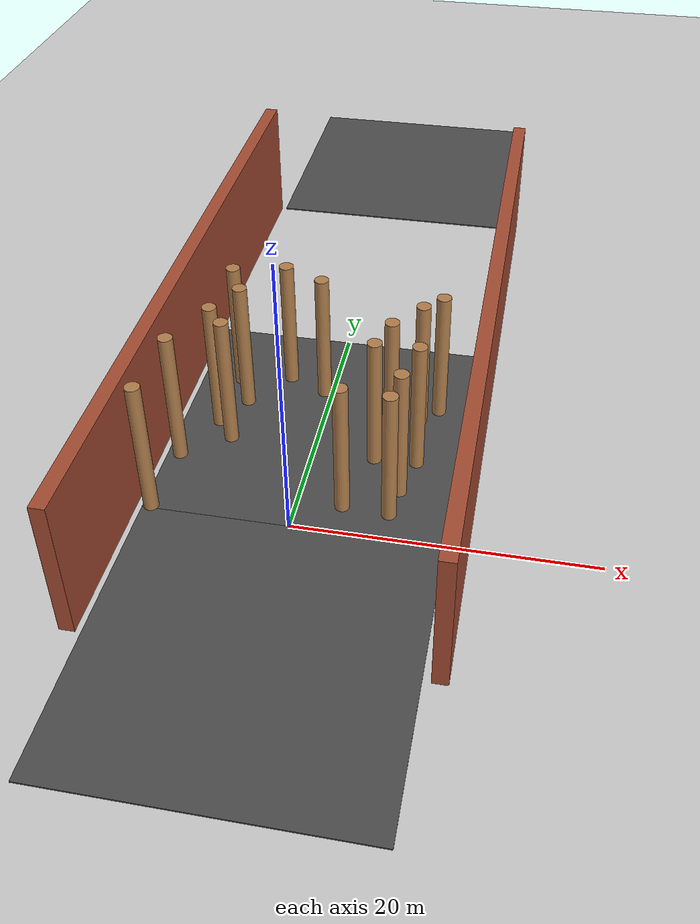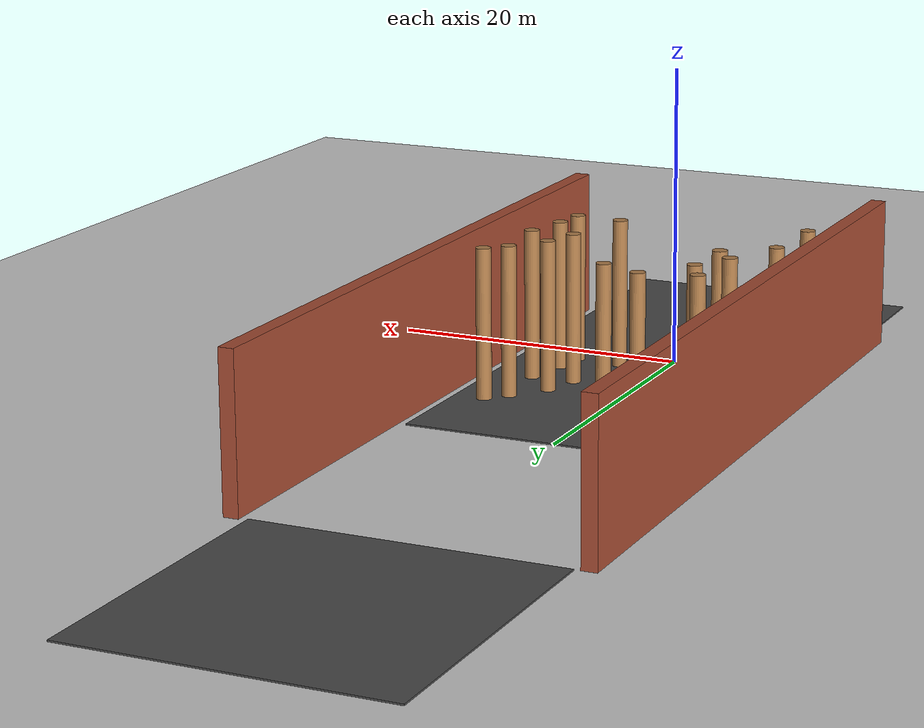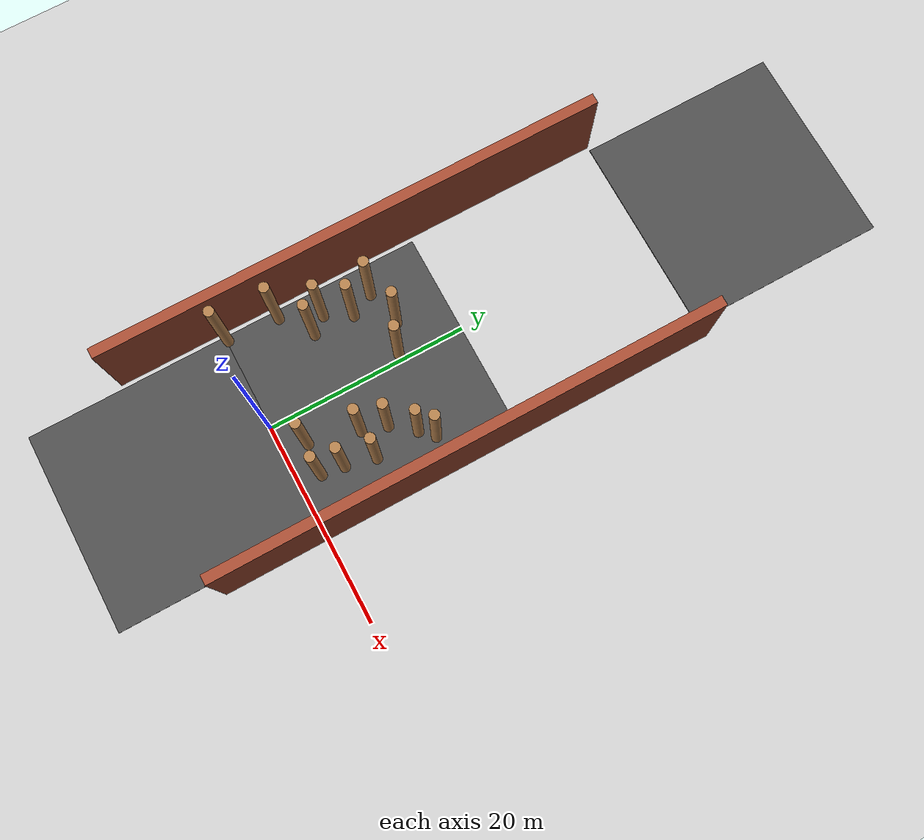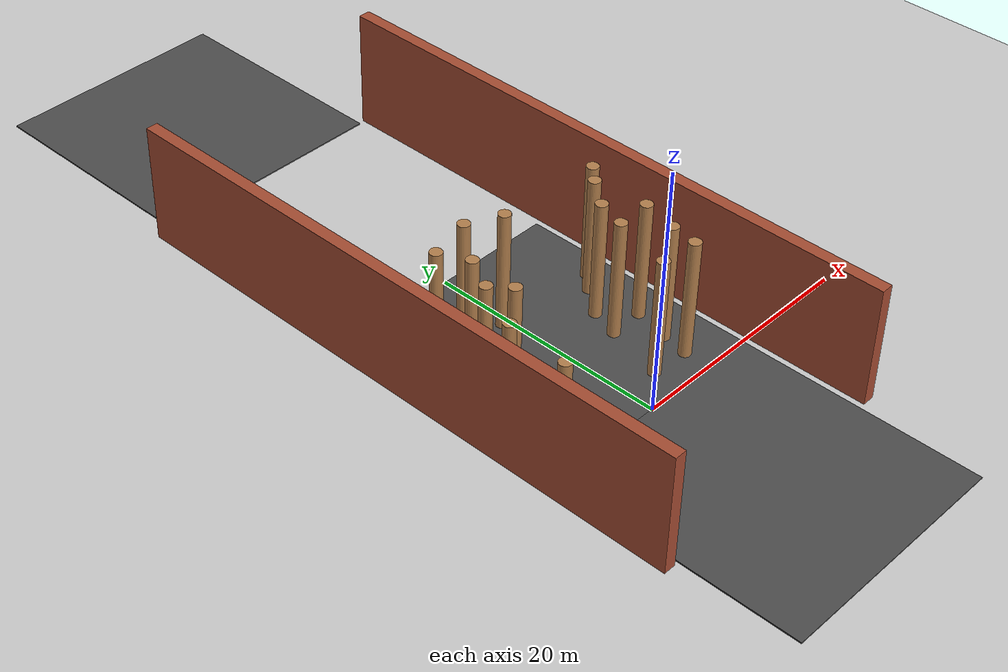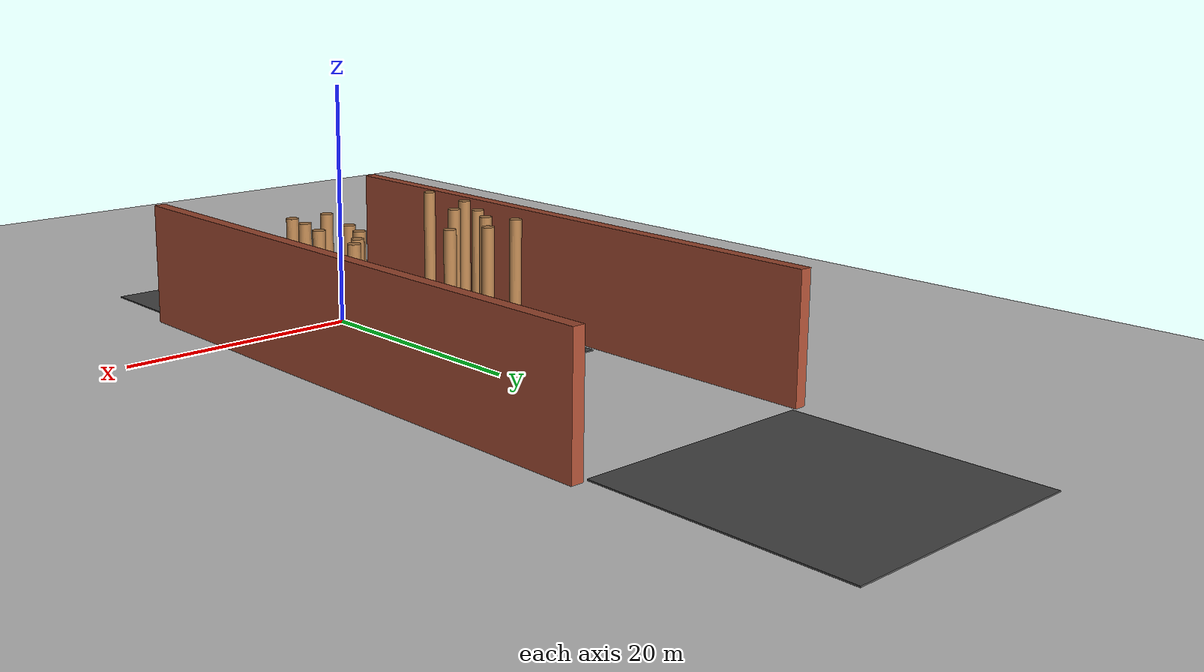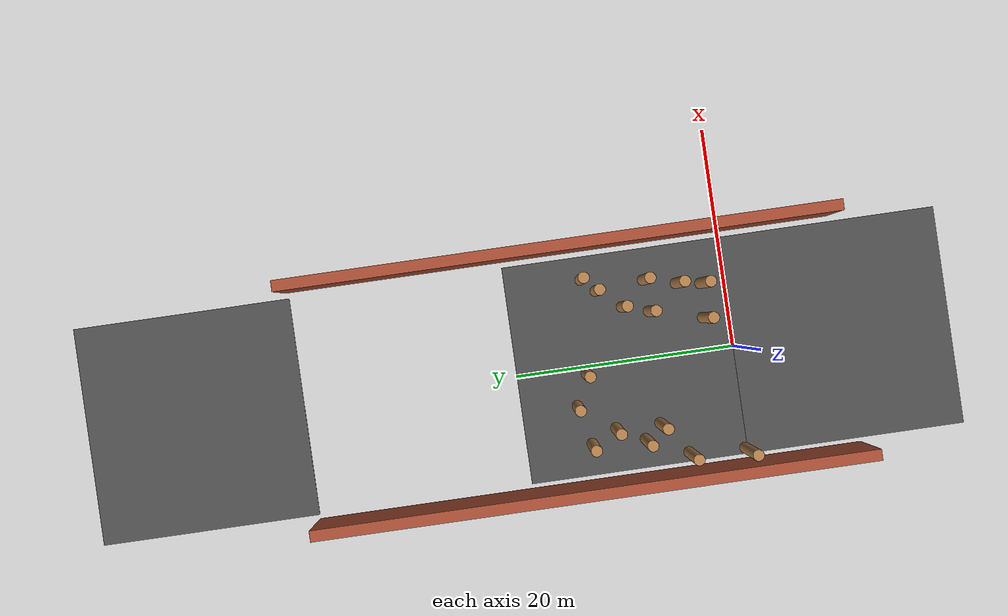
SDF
<sdf version="1.6">
 <world name="default">
  <model name="ground_plane">
   <static>1</static>
   <link name="link">
    <collision name="collision">
     <geometry><plane><normal>0 0 1</normal><size>100 100</size></plane></geometry>
     <surface><friction><ode><mu>100</mu><mu2>50</mu2></ode></friction></surface>
    </collision>
    <visual name="visual">
     <cast_shadows>0</cast_shadows>
     <geometry><plane><normal>0 0 1</normal><size>100 100</size></plane></geometry>
     <material>
      <script><uri>file://media/materials/scripts/gazebo.material</uri><name>Gazebo/Grey</name></script>
     </material>
    </visual>
   </link>
  </model>
  <model name="asphalt_plane_1">
   <static>1</static>
   <link name="link">
    <collision name="collision"><geometry><box><size>20 20 0.1</size></box></geometry></collision>
    <visual name="visual">
     <cast_shadows>0</cast_shadows>
     <geometry><box><size>20 20 0.1</size></box></geometry>
     <material>
      <script>
       <uri>model://asphalt_plane/materials/scripts</uri>
       <uri>model://asphalt_plane/materials/textures</uri>
       <name>vrc/asphalt</name>
      </script>
     </material>
    </visual>
   </link>
   <pose>0.098004 9.97829 0 0 -0 0</pose>
  </model>
  <model name="asphalt_plane_3">
   <static>1</static>
   <link name="link">
    <collision name="collision"><geometry><box><size>20 20 0.1</size></box></geometry></collision>
    <visual name="visual">
     <cast_shadows>0</cast_shadows>
     <geometry><box><size>20 20 0.1</size></box></geometry>
     <material>
      <script>
       <uri>model://asphalt_plane/materials/scripts</uri>
       <uri>model://asphalt_plane/materials/textures</uri>
       <name>vrc/asphalt</name>
      </script>
     </material>
    </visual>
   </link>
   <pose>0.085062 -9.98607 0 0 -0 0</pose>
  </model>
  <model name="train_2">
   <link name="link_0_clone_0_clone_11">
    <pose>4.2784 -11.9007 0.043478 0 -0 0</pose>
    <inertial>
     <mass>1000</mass>
     <inertia><ixx>0.145833</ixx><ixy>0</ixy><ixz>0</ixz><iyy>0.145833</iyy><iyz>0</iyz><izz>0.125</izz></inertia>
    </inertial>
    <visual name="visual">
     <pose>0 0 4.5 0 -0 0</pose>
     <geometry><cylinder><radius>0.5</radius><length>10</length></cylinder></geometry>
     <material>
      <lighting>1</lighting>
      <script><uri>file://media/materials/scripts/gazebo.material</uri><name>Gazebo/WoodFloor</name></script>
      <ambient>0.3 0.3 0.3 1</ambient>
      <diffuse>0.7 0.7 0.7 1</diffuse>
      <specular>0.01 0.01 0.01 1</specular>
      <emissive>0 0 0 1</emissive>
      <shader type="vertex"><normal_map>__default__</normal_map></shader>
     </material>
    </visual>
    <collision name="collision">
     <pose>0 0 4.5 0 -0 0</pose>
     <geometry><cylinder><radius>0.5</radius><length>10</length></cylinder></geometry>
     <surface>
      <friction>
       <ode><mu>1</mu><mu2>1</mu2><fdir1>0 0 0</fdir1><slip1>0</slip1><slip2>0</slip2></ode>
       <torsional>
        <coefficient>1</coefficient>
        <patch_radius>0</patch_radius>
        <surface_radius>0</surface_radius>
        <use_patch_radius>1</use_patch_radius>
        <ode><slip>0</slip></ode>
       </torsional>
      </friction>
      <bounce><restitution_coefficient>0</restitution_coefficient><threshold>1e+06</threshold></bounce>
      <contact>
       <collide_without_contact>0</collide_without_contact>
       <collide_without_contact_bitmask>1</collide_without_contact_bitmask>
       <collide_bitmask>1</collide_bitmask>
       <ode>
        <soft_cfm>0</soft_cfm>
        <soft_erp>0.2</soft_erp>
        <kp>1e+13</kp>
        <kd>1</kd>
        <max_vel>0.01</max_vel>
        <min_depth>0</min_depth>
       </ode>
       <bullet>
        <split_impulse>1</split_impulse>
        <split_impulse_penetration_threshold>-0.01</split_impulse_penetration_threshold>
        <soft_cfm>0</soft_cfm>
        <soft_erp>0.2</soft_erp>
        <kp>1e+13</kp>
        <kd>1</kd>
       </bullet>
      </contact>
     </surface>
    </collision>
   </link>
   <link name="link_0_clone_0_clone_11_clone_11">
    <pose>-7.74072 -8.92178 0.043478 0 -0 3e-06</pose>
    <inertial>
     <mass>1000</mass>
     <inertia><ixx>0.145833</ixx><ixy>0</ixy><ixz>0</ixz><iyy>0.145833</iyy><iyz>0</iyz><izz>0.125</izz></inertia>
    </inertial>
    <visual name="visual">
     <pose>0 0 4.5 0 -0 0</pose>
     <geometry><cylinder><radius>0.5</radius><length>10</length></cylinder></geometry>
     <material>
      <lighting>1</lighting>
      <script><uri>file://media/materials/scripts/gazebo.material</uri><name>Gazebo/WoodFloor</name></script>
      <ambient>0.3 0.3 0.3 1</ambient>
      <diffuse>0.7 0.7 0.7 1</diffuse>
      <specular>0.01 0.01 0.01 1</specular>
      <emissive>0 0 0 1</emissive>
      <shader type="vertex"><normal_map>__default__</normal_map></shader>
     </material>
    </visual>
    <collision name="collision">
     <pose>0 0 4.5 0 -0 0</pose>
     <geometry><cylinder><radius>0.5</radius><length>10</length></cylinder></geometry>
     <surface>
      <friction>
       <ode><mu>1</mu><mu2>1</mu2><fdir1>0 0 0</fdir1><slip1>0</slip1><slip2>0</slip2></ode>
       <torsional>
        <coefficient>1</coefficient>
        <patch_radius>0</patch_radius>
        <surface_radius>0</surface_radius>
        <use_patch_radius>1</use_patch_radius>
        <ode><slip>0</slip></ode>
       </torsional>
      </friction>
      <bounce><restitution_coefficient>0</restitution_coefficient><threshold>1e+06</threshold></bounce>
      <contact>
       <collide_without_contact>0</collide_without_contact>
       <collide_without_contact_bitmask>1</collide_without_contact_bitmask>
       <collide_bitmask>1</collide_bitmask>
       <ode>
        <soft_cfm>0</soft_cfm>
        <soft_erp>0.2</soft_erp>
        <kp>1e+13</kp>
        <kd>1</kd>
        <max_vel>0.01</max_vel>
        <min_depth>0</min_depth>
       </ode>
       <bullet>
        <split_impulse>1</split_impulse>
        <split_impulse_penetration_threshold>-0.01</split_impulse_penetration_threshold>
        <soft_cfm>0</soft_cfm>
        <soft_erp>0.2</soft_erp>
        <kp>1e+13</kp>
        <kd>1</kd>
       </bullet>
      </contact>
     </surface>
    </collision>
   </link>
   <link name="link_0_clone_0_clone_11_clone_13">
    <pose>-8.06919 -14.0479 0.043478 0 -0 3e-06</pose>
    <inertial>
     <mass>1000</mass>
     <inertia><ixx>0.145833</ixx><ixy>0</ixy><ixz>0</ixz><iyy>0.145833</iyy><iyz>0</iyz><izz>0.125</izz></inertia>
    </inertial>
    <visual name="visual">
     <pose>0 0 4.5 0 -0 0</pose>
     <geometry><cylinder><radius>0.5</radius><length>10</length></cylinder></geometry>
     <material>
      <lighting>1</lighting>
      <script><uri>file://media/materials/scripts/gazebo.material</uri><name>Gazebo/WoodFloor</name></script>
      <ambient>0.3 0.3 0.3 1</ambient>
      <diffuse>0.7 0.7 0.7 1</diffuse>
      <specular>0.01 0.01 0.01 1</specular>
      <emissive>0 0 0 1</emissive>
      <shader type="vertex"><normal_map>__default__</normal_map></shader>
     </material>
    </visual>
    <collision name="collision">
     <pose>0 0 4.5 0 -0 0</pose>
     <geometry><cylinder><radius>0.5</radius><length>10</length></cylinder></geometry>
     <surface>
      <friction>
       <ode><mu>1</mu><mu2>1</mu2><fdir1>0 0 0</fdir1><slip1>0</slip1><slip2>0</slip2></ode>
       <torsional>
        <coefficient>1</coefficient>
        <patch_radius>0</patch_radius>
        <surface_radius>0</surface_radius>
        <use_patch_radius>1</use_patch_radius>
        <ode><slip>0</slip></ode>
       </torsional>
      </friction>
      <bounce><restitution_coefficient>0</restitution_coefficient><threshold>1e+06</threshold></bounce>
      <contact>
       <collide_without_contact>0</collide_without_contact>
       <collide_without_contact_bitmask>1</collide_without_contact_bitmask>
       <collide_bitmask>1</collide_bitmask>
       <ode>
        <soft_cfm>0</soft_cfm>
        <soft_erp>0.2</soft_erp>
        <kp>1e+13</kp>
        <kd>1</kd>
        <max_vel>0.01</max_vel>
        <min_depth>0</min_depth>
       </ode>
       <bullet>
        <split_impulse>1</split_impulse>
        <split_impulse_penetration_threshold>-0.01</split_impulse_penetration_threshold>
        <soft_cfm>0</soft_cfm>
        <soft_erp>0.2</soft_erp>
        <kp>1e+13</kp>
        <kd>1</kd>
       </bullet>
      </contact>
     </surface>
    </collision>
   </link>
   <link name="link_0_clone_0_clone_5_clone_1">
    <pose>5.55345 -7.0629 0.043478 0 -0 3e-06</pose>
    <inertial>
     <mass>1000</mass>
     <inertia><ixx>0.145833</ixx><ixy>0</ixy><ixz>0</ixz><iyy>0.145833</iyy><iyz>0</iyz><izz>0.125</izz></inertia>
    </inertial>
    <visual name="visual">
     <pose>0 0 4.5 0 -0 0</pose>
     <geometry><cylinder><radius>0.5</radius><length>10</length></cylinder></geometry>
     <material>
      <lighting>1</lighting>
      <script><uri>file://media/materials/scripts/gazebo.material</uri><name>Gazebo/WoodFloor</name></script>
      <ambient>0.3 0.3 0.3 1</ambient>
      <diffuse>0.7 0.7 0.7 1</diffuse>
      <specular>0.01 0.01 0.01 1</specular>
      <emissive>0 0 0 1</emissive>
      <shader type="vertex"><normal_map>__default__</normal_map></shader>
     </material>
    </visual>
    <collision name="collision">
     <pose>0 0 4.5 0 -0 0</pose>
     <geometry><cylinder><radius>0.5</radius><length>10</length></cylinder></geometry>
     <surface>
      <friction>
       <ode><mu>1</mu><mu2>1</mu2><fdir1>0 0 0</fdir1><slip1>0</slip1><slip2>0</slip2></ode>
       <torsional>
        <coefficient>1</coefficient>
        <patch_radius>0</patch_radius>
        <surface_radius>0</surface_radius>
        <use_patch_radius>1</use_patch_radius>
        <ode><slip>0</slip></ode>
       </torsional>
      </friction>
      <bounce><restitution_coefficient>0</restitution_coefficient><threshold>1e+06</threshold></bounce>
      <contact>
       <collide_without_contact>0</collide_without_contact>
       <collide_without_contact_bitmask>1</collide_without_contact_bitmask>
       <collide_bitmask>1</collide_bitmask>
       <ode>
        <soft_cfm>0</soft_cfm>
        <soft_erp>0.2</soft_erp>
        <kp>1e+13</kp>
        <kd>1</kd>
        <max_vel>0.01</max_vel>
        <min_depth>0</min_depth>
       </ode>
       <bullet>
        <split_impulse>1</split_impulse>
        <split_impulse_penetration_threshold>-0.01</split_impulse_penetration_threshold>
        <soft_cfm>0</soft_cfm>
        <soft_erp>0.2</soft_erp>
        <kp>1e+13</kp>
        <kd>1</kd>
       </bullet>
      </contact>
     </surface>
    </collision>
   </link>
   <link name="link_0_clone_0_clone_5_clone_19_clone_24">
    <pose>-5.97869 -5.13561 0.043478 0 -0 6e-06</pose>
    <inertial>
     <mass>1000</mass>
     <inertia><ixx>0.145833</ixx><ixy>0</ixy><ixz>0</ixz><iyy>0.145833</iyy><iyz>0</iyz><izz>0.125</izz></inertia>
    </inertial>
    <visual name="visual">
     <pose>0 0 4.5 0 -0 0</pose>
     <geometry><cylinder><radius>0.5</radius><length>10</length></cylinder></geometry>
     <material>
      <lighting>1</lighting>
      <script><uri>file://media/materials/scripts/gazebo.material</uri><name>Gazebo/WoodFloor</name></script>
      <ambient>0.3 0.3 0.3 1</ambient>
      <diffuse>0.7 0.7 0.7 1</diffuse>
      <specular>0.01 0.01 0.01 1</specular>
      <emissive>0 0 0 1</emissive>
      <shader type="vertex"><normal_map>__default__</normal_map></shader>
     </material>
    </visual>
    <collision name="collision">
     <pose>0 0 4.5 0 -0 0</pose>
     <geometry><cylinder><radius>0.5</radius><length>10</length></cylinder></geometry>
     <surface>
      <friction>
       <ode><mu>1</mu><mu2>1</mu2><fdir1>0 0 0</fdir1><slip1>0</slip1><slip2>0</slip2></ode>
       <torsional>
        <coefficient>1</coefficient>
        <patch_radius>0</patch_radius>
        <surface_radius>0</surface_radius>
        <use_patch_radius>1</use_patch_radius>
        <ode><slip>0</slip></ode>
       </torsional>
      </friction>
      <bounce><restitution_coefficient>0</restitution_coefficient><threshold>1e+06</threshold></bounce>
      <contact>
       <collide_without_contact>0</collide_without_contact>
       <collide_without_contact_bitmask>1</collide_without_contact_bitmask>
       <collide_bitmask>1</collide_bitmask>
       <ode>
        <soft_cfm>0</soft_cfm>
        <soft_erp>0.2</soft_erp>
        <kp>1e+13</kp>
        <kd>1</kd>
        <max_vel>0.01</max_vel>
        <min_depth>0</min_depth>
       </ode>
       <bullet>
        <split_impulse>1</split_impulse>
        <split_impulse_penetration_threshold>-0.01</split_impulse_penetration_threshold>
        <soft_cfm>0</soft_cfm>
        <soft_erp>0.2</soft_erp>
        <kp>1e+13</kp>
        <kd>1</kd>
       </bullet>
      </contact>
     </surface>
    </collision>
   </link>
   <link name="link_0_clone_0_clone_5_clone_19_clone_25">
    <pose>-4.61157 -2.58866 0.043478 0 -0 6e-06</pose>
    <inertial>
     <mass>1000</mass>
     <inertia><ixx>0.145833</ixx><ixy>0</ixy><ixz>0</ixz><iyy>0.145833</iyy><iyz>0</iyz><izz>0.125</izz></inertia>
    </inertial>
    <visual name="visual">
     <pose>0 0 4.5 0 -0 0</pose>
     <geometry><cylinder><radius>0.5</radius><length>10</length></cylinder></geometry>
     <material>
      <lighting>1</lighting>
      <script><uri>file://media/materials/scripts/gazebo.material</uri><name>Gazebo/WoodFloor</name></script>
      <ambient>0.3 0.3 0.3 1</ambient>
      <diffuse>0.7 0.7 0.7 1</diffuse>
      <specular>0.01 0.01 0.01 1</specular>
      <emissive>0 0 0 1</emissive>
      <shader type="vertex"><normal_map>__default__</normal_map></shader>
     </material>
    </visual>
    <collision name="collision">
     <pose>0 0 4.5 0 -0 0</pose>
     <geometry><cylinder><radius>0.5</radius><length>10</length></cylinder></geometry>
     <surface>
      <friction>
       <ode><mu>1</mu><mu2>1</mu2><fdir1>0 0 0</fdir1><slip1>0</slip1><slip2>0</slip2></ode>
       <torsional>
        <coefficient>1</coefficient>
        <patch_radius>0</patch_radius>
        <surface_radius>0</surface_radius>
        <use_patch_radius>1</use_patch_radius>
        <ode><slip>0</slip></ode>
       </torsional>
      </friction>
      <bounce><restitution_coefficient>0</restitution_coefficient><threshold>1e+06</threshold></bounce>
      <contact>
       <collide_without_contact>0</collide_without_contact>
       <collide_without_contact_bitmask>1</collide_without_contact_bitmask>
       <collide_bitmask>1</collide_bitmask>
       <ode>
        <soft_cfm>0</soft_cfm>
        <soft_erp>0.2</soft_erp>
        <kp>1e+13</kp>
        <kd>1</kd>
        <max_vel>0.01</max_vel>
        <min_depth>0</min_depth>
       </ode>
       <bullet>
        <split_impulse>1</split_impulse>
        <split_impulse_penetration_threshold>-0.01</split_impulse_penetration_threshold>
        <soft_cfm>0</soft_cfm>
        <soft_erp>0.2</soft_erp>
        <kp>1e+13</kp>
        <kd>1</kd>
       </bullet>
      </contact>
     </surface>
    </collision>
   </link>
   <link name="link_0_clone_0_clone_5_clone_19_clone_26">
    <pose>-5.72606 -0.246818 0.043478 0 -0 6e-06</pose>
    <inertial>
     <mass>1000</mass>
     <inertia><ixx>0.145833</ixx><ixy>0</ixy><ixz>0</ixz><iyy>0.145833</iyy><iyz>0</iyz><izz>0.125</izz></inertia>
    </inertial>
    <visual name="visual">
     <pose>0 0 4.5 0 -0 0</pose>
     <geometry><cylinder><radius>0.5</radius><length>10</length></cylinder></geometry>
     <material>
      <lighting>1</lighting>
      <script><uri>file://media/materials/scripts/gazebo.material</uri><name>Gazebo/WoodFloor</name></script>
      <ambient>0.3 0.3 0.3 1</ambient>
      <diffuse>0.7 0.7 0.7 1</diffuse>
      <specular>0.01 0.01 0.01 1</specular>
      <emissive>0 0 0 1</emissive>
      <shader type="vertex"><normal_map>__default__</normal_map></shader>
     </material>
    </visual>
    <collision name="collision">
     <pose>0 0 4.5 0 -0 0</pose>
     <geometry><cylinder><radius>0.5</radius><length>10</length></cylinder></geometry>
     <surface>
      <friction>
       <ode><mu>1</mu><mu2>1</mu2><fdir1>0 0 0</fdir1><slip1>0</slip1><slip2>0</slip2></ode>
       <torsional>
        <coefficient>1</coefficient>
        <patch_radius>0</patch_radius>
        <surface_radius>0</surface_radius>
        <use_patch_radius>1</use_patch_radius>
        <ode><slip>0</slip></ode>
       </torsional>
      </friction>
      <bounce><restitution_coefficient>0</restitution_coefficient><threshold>1e+06</threshold></bounce>
      <contact>
       <collide_without_contact>0</collide_without_contact>
       <collide_without_contact_bitmask>1</collide_without_contact_bitmask>
       <collide_bitmask>1</collide_bitmask>
       <ode>
        <soft_cfm>0</soft_cfm>
        <soft_erp>0.2</soft_erp>
        <kp>1e+13</kp>
        <kd>1</kd>
        <max_vel>0.01</max_vel>
        <min_depth>0</min_depth>
       </ode>
       <bullet>
        <split_impulse>1</split_impulse>
        <split_impulse_penetration_threshold>-0.01</split_impulse_penetration_threshold>
        <soft_cfm>0</soft_cfm>
        <soft_erp>0.2</soft_erp>
        <kp>1e+13</kp>
        <kd>1</kd>
       </bullet>
      </contact>
     </surface>
    </collision>
   </link>
   <link name="link_0_clone_0_clone_5_clone_19_clone_27">
    <pose>7.41657 -12.1039 0.043478 0 -0 6e-06</pose>
    <inertial>
     <mass>1000</mass>
     <inertia><ixx>0.145833</ixx><ixy>0</ixy><ixz>0</ixz><iyy>0.145833</iyy><iyz>0</iyz><izz>0.125</izz></inertia>
    </inertial>
    <visual name="visual">
     <pose>0 0 4.5 0 -0 0</pose>
     <geometry><cylinder><radius>0.5</radius><length>10</length></cylinder></geometry>
     <material>
      <lighting>1</lighting>
      <script><uri>file://media/materials/scripts/gazebo.material</uri><name>Gazebo/WoodFloor</name></script>
      <ambient>0.3 0.3 0.3 1</ambient>
      <diffuse>0.7 0.7 0.7 1</diffuse>
      <specular>0.01 0.01 0.01 1</specular>
      <emissive>0 0 0 1</emissive>
      <shader type="vertex"><normal_map>__default__</normal_map></shader>
     </material>
    </visual>
    <collision name="collision">
     <pose>0 0 4.5 0 -0 0</pose>
     <geometry><cylinder><radius>0.5</radius><length>10</length></cylinder></geometry>
     <surface>
      <friction>
       <ode><mu>1</mu><mu2>1</mu2><fdir1>0 0 0</fdir1><slip1>0</slip1><slip2>0</slip2></ode>
       <torsional>
        <coefficient>1</coefficient>
        <patch_radius>0</patch_radius>
        <surface_radius>0</surface_radius>
        <use_patch_radius>1</use_patch_radius>
        <ode><slip>0</slip></ode>
       </torsional>
      </friction>
      <bounce><restitution_coefficient>0</restitution_coefficient><threshold>1e+06</threshold></bounce>
      <contact>
       <collide_without_contact>0</collide_without_contact>
       <collide_without_contact_bitmask>1</collide_without_contact_bitmask>
       <collide_bitmask>1</collide_bitmask>
       <ode>
        <soft_cfm>0</soft_cfm>
        <soft_erp>0.2</soft_erp>
        <kp>1e+13</kp>
        <kd>1</kd>
        <max_vel>0.01</max_vel>
        <min_depth>0</min_depth>
       </ode>
       <bullet>
        <split_impulse>1</split_impulse>
        <split_impulse_penetration_threshold>-0.01</split_impulse_penetration_threshold>
        <soft_cfm>0</soft_cfm>
        <soft_erp>0.2</soft_erp>
        <kp>1e+13</kp>
        <kd>1</kd>
       </bullet>
      </contact>
     </surface>
    </collision>
   </link>
   <link name="link_0_clone_0_clone_5_clone_19_clone_28">
    <pose>7.74037 -9.88302 0.043478 0 -0 6e-06</pose>
    <inertial>
     <mass>1000</mass>
     <inertia><ixx>0.145833</ixx><ixy>0</ixy><ixz>0</ixz><iyy>0.145833</iyy><iyz>0</iyz><izz>0.125</izz></inertia>
    </inertial>
    <visual name="visual">
     <pose>0 0 4.5 0 -0 0</pose>
     <geometry><cylinder><radius>0.5</radius><length>10</length></cylinder></geometry>
     <material>
      <lighting>1</lighting>
      <script><uri>file://media/materials/scripts/gazebo.material</uri><name>Gazebo/WoodFloor</name></script>
      <ambient>0.3 0.3 0.3 1</ambient>
      <diffuse>0.7 0.7 0.7 1</diffuse>
      <specular>0.01 0.01 0.01 1</specular>
      <emissive>0 0 0 1</emissive>
      <shader type="vertex"><normal_map>__default__</normal_map></shader>
     </material>
    </visual>
    <collision name="collision">
     <pose>0 0 4.5 0 -0 0</pose>
     <geometry><cylinder><radius>0.5</radius><length>10</length></cylinder></geometry>
     <surface>
      <friction>
       <ode><mu>1</mu><mu2>1</mu2><fdir1>0 0 0</fdir1><slip1>0</slip1><slip2>0</slip2></ode>
       <torsional>
        <coefficient>1</coefficient>
        <patch_radius>0</patch_radius>
        <surface_radius>0</surface_radius>
        <use_patch_radius>1</use_patch_radius>
        <ode><slip>0</slip></ode>
       </torsional>
      </friction>
      <bounce><restitution_coefficient>0</restitution_coefficient><threshold>1e+06</threshold></bounce>
      <contact>
       <collide_without_contact>0</collide_without_contact>
       <collide_without_contact_bitmask>1</collide_without_contact_bitmask>
       <collide_bitmask>1</collide_bitmask>
       <ode>
        <soft_cfm>0</soft_cfm>
        <soft_erp>0.2</soft_erp>
        <kp>1e+13</kp>
        <kd>1</kd>
        <max_vel>0.01</max_vel>
        <min_depth>0</min_depth>
       </ode>
       <bullet>
        <split_impulse>1</split_impulse>
        <split_impulse_penetration_threshold>-0.01</split_impulse_penetration_threshold>
        <soft_cfm>0</soft_cfm>
        <soft_erp>0.2</soft_erp>
        <kp>1e+13</kp>
        <kd>1</kd>
       </bullet>
      </contact>
     </surface>
    </collision>
   </link>
   <link name="link_0_clone_0_clone_5_clone_19_clone_29">
    <pose>8.45499 -6.94527 0.043478 0 -0 6e-06</pose>
    <inertial>
     <mass>1000</mass>
     <inertia><ixx>0.145833</ixx><ixy>0</ixy><ixz>0</ixz><iyy>0.145833</iyy><iyz>0</iyz><izz>0.125</izz></inertia>
    </inertial>
    <visual name="visual">
     <pose>0 0 4.5 0 -0 0</pose>
     <geometry><cylinder><radius>0.5</radius><length>10</length></cylinder></geometry>
     <material>
      <lighting>1</lighting>
      <script><uri>file://media/materials/scripts/gazebo.material</uri><name>Gazebo/WoodFloor</name></script>
      <ambient>0.3 0.3 0.3 1</ambient>
      <diffuse>0.7 0.7 0.7 1</diffuse>
      <specular>0.01 0.01 0.01 1</specular>
      <emissive>0 0 0 1</emissive>
      <shader type="vertex"><normal_map>__default__</normal_map></shader>
     </material>
    </visual>
    <collision name="collision">
     <pose>0 0 4.5 0 -0 0</pose>
     <geometry><cylinder><radius>0.5</radius><length>10</length></cylinder></geometry>
     <surface>
      <friction>
       <ode><mu>1</mu><mu2>1</mu2><fdir1>0 0 0</fdir1><slip1>0</slip1><slip2>0</slip2></ode>
       <torsional>
        <coefficient>1</coefficient>
        <patch_radius>0</patch_radius>
        <surface_radius>0</surface_radius>
        <use_patch_radius>1</use_patch_radius>
        <ode><slip>0</slip></ode>
       </torsional>
      </friction>
      <bounce><restitution_coefficient>0</restitution_coefficient><threshold>1e+06</threshold></bounce>
      <contact>
       <collide_without_contact>0</collide_without_contact>
       <collide_without_contact_bitmask>1</collide_without_contact_bitmask>
       <collide_bitmask>1</collide_bitmask>
       <ode>
        <soft_cfm>0</soft_cfm>
        <soft_erp>0.2</soft_erp>
        <kp>1e+13</kp>
        <kd>1</kd>
        <max_vel>0.01</max_vel>
        <min_depth>0</min_depth>
       </ode>
       <bullet>
        <split_impulse>1</split_impulse>
        <split_impulse_penetration_threshold>-0.01</split_impulse_penetration_threshold>
        <soft_cfm>0</soft_cfm>
        <soft_erp>0.2</soft_erp>
        <kp>1e+13</kp>
        <kd>1</kd>
       </bullet>
      </contact>
     </surface>
    </collision>
   </link>
   <link name="link_0_clone_0_clone_5_clone_19_clone_30">
    <pose>6.29644 -4.66352 0.043478 0 -0 6e-06</pose>
    <inertial>
     <mass>1000</mass>
     <inertia><ixx>0.145833</ixx><ixy>0</ixy><ixz>0</ixz><iyy>0.145833</iyy><iyz>0</iyz><izz>0.125</izz></inertia>
    </inertial>
    <visual name="visual">
     <pose>0 0 4.5 0 -0 0</pose>
     <geometry><cylinder><radius>0.5</radius><length>10</length></cylinder></geometry>
     <material>
      <lighting>1</lighting>
      <script><uri>file://media/materials/scripts/gazebo.material</uri><name>Gazebo/WoodFloor</name></script>
      <ambient>0.3 0.3 0.3 1</ambient>
      <diffuse>0.7 0.7 0.7 1</diffuse>
      <specular>0.01 0.01 0.01 1</specular>
      <emissive>0 0 0 1</emissive>
      <shader type="vertex"><normal_map>__default__</normal_map></shader>
     </material>
    </visual>
    <collision name="collision">
     <pose>0 0 4.5 0 -0 0</pose>
     <geometry><cylinder><radius>0.5</radius><length>10</length></cylinder></geometry>
     <surface>
      <friction>
       <ode><mu>1</mu><mu2>1</mu2><fdir1>0 0 0</fdir1><slip1>0</slip1><slip2>0</slip2></ode>
       <torsional>
        <coefficient>1</coefficient>
        <patch_radius>0</patch_radius>
        <surface_radius>0</surface_radius>
        <use_patch_radius>1</use_patch_radius>
        <ode><slip>0</slip></ode>
       </torsional>
      </friction>
      <bounce><restitution_coefficient>0</restitution_coefficient><threshold>1e+06</threshold></bounce>
      <contact>
       <collide_without_contact>0</collide_without_contact>
       <collide_without_contact_bitmask>1</collide_without_contact_bitmask>
       <collide_bitmask>1</collide_bitmask>
       <ode>
        <soft_cfm>0</soft_cfm>
        <soft_erp>0.2</soft_erp>
        <kp>1e+13</kp>
        <kd>1</kd>
        <max_vel>0.01</max_vel>
        <min_depth>0</min_depth>
       </ode>
       <bullet>
        <split_impulse>1</split_impulse>
        <split_impulse_penetration_threshold>-0.01</split_impulse_penetration_threshold>
        <soft_cfm>0</soft_cfm>
        <soft_erp>0.2</soft_erp>
        <kp>1e+13</kp>
        <kd>1</kd>
       </bullet>
      </contact>
     </surface>
    </collision>
   </link>
   <link name="link_0_clone_0_clone_5_clone_19_clone_31">
    <pose>9.27394 -1.24677 0.043478 0 -0 6e-06</pose>
    <inertial>
     <mass>1000</mass>
     <inertia><ixx>0.145833</ixx><ixy>0</ixy><ixz>0</ixz><iyy>0.145833</iyy><iyz>0</iyz><izz>0.125</izz></inertia>
    </inertial>
    <visual name="visual">
     <pose>0 0 4.5 0 -0 0</pose>
     <geometry><cylinder><radius>0.5</radius><length>10</length></cylinder></geometry>
     <material>
      <lighting>1</lighting>
      <script><uri>file://media/materials/scripts/gazebo.material</uri><name>Gazebo/WoodFloor</name></script>
      <ambient>0.3 0.3 0.3 1</ambient>
      <diffuse>0.7 0.7 0.7 1</diffuse>
      <specular>0.01 0.01 0.01 1</specular>
      <emissive>0 0 0 1</emissive>
      <shader type="vertex"><normal_map>__default__</normal_map></shader>
     </material>
    </visual>
    <collision name="collision">
     <pose>0 0 4.5 0 -0 0</pose>
     <geometry><cylinder><radius>0.5</radius><length>10</length></cylinder></geometry>
     <surface>
      <friction>
       <ode><mu>1</mu><mu2>1</mu2><fdir1>0 0 0</fdir1><slip1>0</slip1><slip2>0</slip2></ode>
       <torsional>
        <coefficient>1</coefficient>
        <patch_radius>0</patch_radius>
        <surface_radius>0</surface_radius>
        <use_patch_radius>1</use_patch_radius>
        <ode><slip>0</slip></ode>
       </torsional>
      </friction>
      <bounce><restitution_coefficient>0</restitution_coefficient><threshold>1e+06</threshold></bounce>
      <contact>
       <collide_without_contact>0</collide_without_contact>
       <collide_without_contact_bitmask>1</collide_without_contact_bitmask>
       <collide_bitmask>1</collide_bitmask>
       <ode>
        <soft_cfm>0</soft_cfm>
        <soft_erp>0.2</soft_erp>
        <kp>1e+13</kp>
        <kd>1</kd>
        <max_vel>0.01</max_vel>
        <min_depth>0</min_depth>
       </ode>
       <bullet>
        <split_impulse>1</split_impulse>
        <split_impulse_penetration_threshold>-0.01</split_impulse_penetration_threshold>
        <soft_cfm>0</soft_cfm>
        <soft_erp>0.2</soft_erp>
        <kp>1e+13</kp>
        <kd>1</kd>
       </bullet>
      </contact>
     </surface>
    </collision>
   </link>
   <link name="link_0_clone_0_clone_5_clone_21">
    <pose>0.690093 -0.614865 0.043478 0 -0 3e-06</pose>
    <inertial>
     <mass>1000</mass>
     <inertia><ixx>0.145833</ixx><ixy>0</ixy><ixz>0</ixz><iyy>0.145833</iyy><iyz>0</iyz><izz>0.125</izz></inertia>
    </inertial>
    <visual name="visual">
     <pose>0 0 4.5 0 -0 0</pose>
     <geometry><cylinder><radius>0.5</radius><length>10</length></cylinder></geometry>
     <material>
      <lighting>1</lighting>
      <script><uri>file://media/materials/scripts/gazebo.material</uri><name>Gazebo/WoodFloor</name></script>
      <ambient>0.3 0.3 0.3 1</ambient>
      <diffuse>0.7 0.7 0.7 1</diffuse>
      <specular>0.01 0.01 0.01 1</specular>
      <emissive>0 0 0 1</emissive>
      <shader type="vertex"><normal_map>__default__</normal_map></shader>
     </material>
    </visual>
    <collision name="collision">
     <pose>0 0 4.5 0 -0 0</pose>
     <geometry><cylinder><radius>0.5</radius><length>10</length></cylinder></geometry>
     <surface>
      <friction>
       <ode><mu>1</mu><mu2>1</mu2><fdir1>0 0 0</fdir1><slip1>0</slip1><slip2>0</slip2></ode>
       <torsional>
        <coefficient>1</coefficient>
        <patch_radius>0</patch_radius>
        <surface_radius>0</surface_radius>
        <use_patch_radius>1</use_patch_radius>
        <ode><slip>0</slip></ode>
       </torsional>
      </friction>
      <bounce><restitution_coefficient>0</restitution_coefficient><threshold>1e+06</threshold></bounce>
      <contact>
       <collide_without_contact>0</collide_without_contact>
       <collide_without_contact_bitmask>1</collide_without_contact_bitmask>
       <collide_bitmask>1</collide_bitmask>
       <ode>
        <soft_cfm>0</soft_cfm>
        <soft_erp>0.2</soft_erp>
        <kp>1e+13</kp>
        <kd>1</kd>
        <max_vel>0.01</max_vel>
        <min_depth>0</min_depth>
       </ode>
       <bullet>
        <split_impulse>1</split_impulse>
        <split_impulse_penetration_threshold>-0.01</split_impulse_penetration_threshold>
        <soft_cfm>0</soft_cfm>
        <soft_erp>0.2</soft_erp>
        <kp>1e+13</kp>
        <kd>1</kd>
       </bullet>
      </contact>
     </surface>
    </collision>
   </link>
   <link name="link_0_clone_0_clone_5_clone_22">
    <pose>8.06962 -2.47589 0.043478 0 -0 3e-06</pose>
    <inertial>
     <mass>1000</mass>
     <inertia><ixx>0.145833</ixx><ixy>0</ixy><ixz>0</ixz><iyy>0.145833</iyy><iyz>0</iyz><izz>0.125</izz></inertia>
    </inertial>
    <visual name="visual">
     <pose>0 0 4.5 0 -0 0</pose>
     <geometry><cylinder><radius>0.5</radius><length>10</length></cylinder></geometry>
     <material>
      <lighting>1</lighting>
      <script><uri>file://media/materials/scripts/gazebo.material</uri><name>Gazebo/WoodFloor</name></script>
      <ambient>0.3 0.3 0.3 1</ambient>
      <diffuse>0.7 0.7 0.7 1</diffuse>
      <specular>0.01 0.01 0.01 1</specular>
      <emissive>0 0 0 1</emissive>
      <shader type="vertex"><normal_map>__default__</normal_map></shader>
     </material>
    </visual>
    <collision name="collision">
     <pose>0 0 4.5 0 -0 0</pose>
     <geometry><cylinder><radius>0.5</radius><length>10</length></cylinder></geometry>
     <surface>
      <friction>
       <ode><mu>1</mu><mu2>1</mu2><fdir1>0 0 0</fdir1><slip1>0</slip1><slip2>0</slip2></ode>
       <torsional>
        <coefficient>1</coefficient>
        <patch_radius>0</patch_radius>
        <surface_radius>0</surface_radius>
        <use_patch_radius>1</use_patch_radius>
        <ode><slip>0</slip></ode>
       </torsional>
      </friction>
      <bounce><restitution_coefficient>0</restitution_coefficient><threshold>1e+06</threshold></bounce>
      <contact>
       <collide_without_contact>0</collide_without_contact>
       <collide_without_contact_bitmask>1</collide_without_contact_bitmask>
       <collide_bitmask>1</collide_bitmask>
       <ode>
        <soft_cfm>0</soft_cfm>
        <soft_erp>0.2</soft_erp>
        <kp>1e+13</kp>
        <kd>1</kd>
        <max_vel>0.01</max_vel>
        <min_depth>0</min_depth>
       </ode>
       <bullet>
        <split_impulse>1</split_impulse>
        <split_impulse_penetration_threshold>-0.01</split_impulse_penetration_threshold>
        <soft_cfm>0</soft_cfm>
        <soft_erp>0.2</soft_erp>
        <kp>1e+13</kp>
        <kd>1</kd>
       </bullet>
      </contact>
     </surface>
    </collision>
   </link>
   <link name="link_0_clone_0_clone_5_clone_4">
    <pose>-4.72604 -6.65488 0.043478 0 -0 3e-06</pose>
    <inertial>
     <mass>1000</mass>
     <inertia><ixx>0.145833</ixx><ixy>0</ixy><ixz>0</ixz><iyy>0.145833</iyy><iyz>0</iyz><izz>0.125</izz></inertia>
    </inertial>
    <visual name="visual">
     <pose>0 0 4.5 0 -0 0</pose>
     <geometry><cylinder><radius>0.5</radius><length>10</length></cylinder></geometry>
     <material>
      <lighting>1</lighting>
      <script><uri>file://media/materials/scripts/gazebo.material</uri><name>Gazebo/WoodFloor</name></script>
      <ambient>0.3 0.3 0.3 1</ambient>
      <diffuse>0.7 0.7 0.7 1</diffuse>
      <specular>0.01 0.01 0.01 1</specular>
      <emissive>0 0 0 1</emissive>
      <shader type="vertex"><normal_map>__default__</normal_map></shader>
     </material>
    </visual>
    <collision name="collision">
     <pose>0 0 4.5 0 -0 0</pose>
     <geometry><cylinder><radius>0.5</radius><length>10</length></cylinder></geometry>
     <surface>
      <friction>
       <ode><mu>1</mu><mu2>1</mu2><fdir1>0 0 0</fdir1><slip1>0</slip1><slip2>0</slip2></ode>
       <torsional>
        <coefficient>1</coefficient>
        <patch_radius>0</patch_radius>
        <surface_radius>0</surface_radius>
        <use_patch_radius>1</use_patch_radius>
        <ode><slip>0</slip></ode>
       </torsional>
      </friction>
      <bounce><restitution_coefficient>0</restitution_coefficient><threshold>1e+06</threshold></bounce>
      <contact>
       <collide_without_contact>0</collide_without_contact>
       <collide_without_contact_bitmask>1</collide_without_contact_bitmask>
       <collide_bitmask>1</collide_bitmask>
       <ode>
        <soft_cfm>0</soft_cfm>
        <soft_erp>0.2</soft_erp>
        <kp>1e+13</kp>
        <kd>1</kd>
        <max_vel>0.01</max_vel>
        <min_depth>0</min_depth>
       </ode>
       <bullet>
        <split_impulse>1</split_impulse>
        <split_impulse_penetration_threshold>-0.01</split_impulse_penetration_threshold>
        <soft_cfm>0</soft_cfm>
        <soft_erp>0.2</soft_erp>
        <kp>1e+13</kp>
        <kd>1</kd>
       </bullet>
      </contact>
     </surface>
    </collision>
   </link>
   <link name="link_0_clone_0_clone_5_clone_6">
    <pose>-2.10439 0.622832 0.043478 0 -0 3e-06</pose>
    <inertial>
     <mass>1000</mass>
     <inertia><ixx>0.145833</ixx><ixy>0</ixy><ixz>0</ixz><iyy>0.145833</iyy><iyz>0</iyz><izz>0.125</izz></inertia>
    </inertial>
    <visual name="visual">
     <pose>0 0 4.5 0 -0 0</pose>
     <geometry><cylinder><radius>0.5</radius><length>10</length></cylinder></geometry>
     <material>
      <lighting>1</lighting>
      <script><uri>file://media/materials/scripts/gazebo.material</uri><name>Gazebo/WoodFloor</name></script>
      <ambient>0.3 0.3 0.3 1</ambient>
      <diffuse>0.7 0.7 0.7 1</diffuse>
      <specular>0.01 0.01 0.01 1</specular>
      <emissive>0 0 0 1</emissive>
      <shader type="vertex"><normal_map>__default__</normal_map></shader>
     </material>
    </visual>
    <collision name="collision">
     <pose>0 0 4.5 0 -0 0</pose>
     <geometry><cylinder><radius>0.5</radius><length>10</length></cylinder></geometry>
     <surface>
      <friction>
       <ode><mu>1</mu><mu2>1</mu2><fdir1>0 0 0</fdir1><slip1>0</slip1><slip2>0</slip2></ode>
       <torsional>
        <coefficient>1</coefficient>
        <patch_radius>0</patch_radius>
        <surface_radius>0</surface_radius>
        <use_patch_radius>1</use_patch_radius>
        <ode><slip>0</slip></ode>
       </torsional>
      </friction>
      <bounce><restitution_coefficient>0</restitution_coefficient><threshold>1e+06</threshold></bounce>
      <contact>
       <collide_without_contact>0</collide_without_contact>
       <collide_without_contact_bitmask>1</collide_without_contact_bitmask>
       <collide_bitmask>1</collide_bitmask>
       <ode>
        <soft_cfm>0</soft_cfm>
        <soft_erp>0.2</soft_erp>
        <kp>1e+13</kp>
        <kd>1</kd>
        <max_vel>0.01</max_vel>
        <min_depth>0</min_depth>
       </ode>
       <bullet>
        <split_impulse>1</split_impulse>
        <split_impulse_penetration_threshold>-0.01</split_impulse_penetration_threshold>
        <soft_cfm>0</soft_cfm>
        <soft_erp>0.2</soft_erp>
        <kp>1e+13</kp>
        <kd>1</kd>
       </bullet>
      </contact>
     </surface>
    </collision>
   </link>
   <static>1</static>
   <pose>-1.27394 14.2468 0.506522 0 0 -3e-06</pose>
  </model>
  <model name="walls">
   <link name="link_0_clone">
    <pose>-10.7701 14.8158 5 0 -0 0</pose>
    <inertial>
     <mass>10000</mass>
     <inertia>
      <ixx>0.166667</ixx>
      <ixy>0</ixy>
      <ixz>0</ixz>
      <iyy>0.166667</iyy>
      <iyz>0</iyz>
      <izz>0.166667</izz>
     </inertia>
     <pose>0 0 5 0 -0 0</pose>
    </inertial>
    <visual name="visual">
     <geometry><box><size>1 50 10</size></box></geometry>
     <material>
      <lighting>1</lighting>
      <script><uri>file://media/materials/scripts/gazebo.material</uri><name>Gazebo/Bricks</name></script>
      <ambient>0.3 0.3 0.3 1</ambient>
      <diffuse>0.7 0.7 0.7 1</diffuse>
      <specular>0.01 0.01 0.01 1</specular>
      <emissive>0 0 0 1</emissive>
      <shader type="vertex"><normal_map>__default__</normal_map></shader>
     </material>
    </visual>
    <collision name="collision">
     <geometry><box><size>1 50 10</size></box></geometry>
     <surface>
      <friction>
       <ode><mu>1</mu><mu2>1</mu2><fdir1>0 0 0</fdir1><slip1>0</slip1><slip2>0</slip2></ode>
       <torsional>
        <coefficient>1</coefficient>
        <patch_radius>0</patch_radius>
        <surface_radius>0</surface_radius>
        <use_patch_radius>1</use_patch_radius>
        <ode><slip>0</slip></ode>
       </torsional>
      </friction>
      <bounce><restitution_coefficient>0</restitution_coefficient><threshold>1e+06</threshold></bounce>
      <contact>
       <collide_without_contact>0</collide_without_contact>
       <collide_without_contact_bitmask>1</collide_without_contact_bitmask>
       <collide_bitmask>1</collide_bitmask>
       <ode>
        <soft_cfm>0</soft_cfm>
        <soft_erp>0.2</soft_erp>
        <kp>1e+13</kp>
        <kd>1</kd>
        <max_vel>0.01</max_vel>
        <min_depth>0</min_depth>
       </ode>
       <bullet>
        <split_impulse>1</split_impulse>
        <split_impulse_penetration_threshold>-0.01</split_impulse_penetration_threshold>
        <soft_cfm>0</soft_cfm>
        <soft_erp>0.2</soft_erp>
        <kp>1e+13</kp>
        <kd>1</kd>
       </bullet>
      </contact>
     </surface>
    </collision>
   </link>
   <link name="link_0_clone_clone">
    <pose>11.1264 15.0454 5 0 -0 0</pose>
    <inertial>
     <mass>10000</mass>
     <inertia>
      <ixx>0.166667</ixx>
      <ixy>0</ixy>
      <ixz>0</ixz>
      <iyy>0.166667</iyy>
      <iyz>0</iyz>
      <izz>0.166667</izz>
     </inertia>
     <pose>0 0 5 0 -0 0</pose>
    </inertial>
    <visual name="visual">
     <geometry><box><size>1 50 10</size></box></geometry>
     <material>
      <lighting>1</lighting>
      <script><uri>file://media/materials/scripts/gazebo.material</uri><name>Gazebo/Bricks</name></script>
      <ambient>0.3 0.3 0.3 1</ambient>
      <diffuse>0.7 0.7 0.7 1</diffuse>
      <specular>0.01 0.01 0.01 1</specular>
      <emissive>0 0 0 1</emissive>
      <shader type="vertex"><normal_map>__default__</normal_map></shader>
     </material>
    </visual>
    <collision name="collision">
     <geometry><box><size>1 50 10</size></box></geometry>
     <surface>
      <friction>
       <ode><mu>1</mu><mu2>1</mu2><fdir1>0 0 0</fdir1><slip1>0</slip1><slip2>0</slip2></ode>
       <torsional>
        <coefficient>1</coefficient>
        <patch_radius>0</patch_radius>
        <surface_radius>0</surface_radius>
        <use_patch_radius>1</use_patch_radius>
        <ode><slip>0</slip></ode>
       </torsional>
      </friction>
      <bounce><restitution_coefficient>0</restitution_coefficient><threshold>1e+06</threshold></bounce>
      <contact>
       <collide_without_contact>0</collide_without_contact>
       <collide_without_contact_bitmask>1</collide_without_contact_bitmask>
       <collide_bitmask>1</collide_bitmask>
       <ode>
        <soft_cfm>0</soft_cfm>
        <soft_erp>0.2</soft_erp>
        <kp>1e+13</kp>
        <kd>1</kd>
        <max_vel>0.01</max_vel>
        <min_depth>0</min_depth>
       </ode>
       <bullet>
        <split_impulse>1</split_impulse>
        <split_impulse_penetration_threshold>-0.01</split_impulse_penetration_threshold>
        <soft_cfm>0</soft_cfm>
        <soft_erp>0.2</soft_erp>
        <kp>1e+13</kp>
        <kd>1</kd>
       </bullet>
      </contact>
     </surface>
    </collision>
   </link>
   <static>1</static>
   <pose>-0.0241 -0.196 0 0 -0 0</pose>
  </model>
  <model name="asphalt_plane">
   <link name="link">
    <inertial>
     <mass>1</mass>
     <inertia><ixx>1</ixx><ixy>0</ixy><ixz>0</ixz><iyy>1</iyy><iyz>0</iyz><izz>1</izz></inertia>
    </inertial>
    <visual name="visual">
     <cast_shadows>0</cast_shadows>
     <geometry><box><size>20 20 0.1</size></box></geometry>
     <material>
      <script>
       <uri>model://asphalt_plane/materials/scripts</uri>
       <uri>model://asphalt_plane/materials/textures</uri>
       <name>vrc/asphalt</name>
      </script>
      <ambient>0.5 0.5 0.5 1</ambient>
      <diffuse>0.5 0.5 0.5 1</diffuse>
      <specular>0.2 0.2 0.2 1</specular>
      <emissive>0 0 0 1</emissive>
      <shader type="vertex"><normal_map>__default__</normal_map></shader>
     </material>
    </visual>
    <collision name="collision">
     <geometry><box><size>20 20 0.1</size></box></geometry>
     <surface>
      <friction>
       <ode><mu>1</mu><mu2>1</mu2><fdir1>0 0 0</fdir1><slip1>0</slip1><slip2>0</slip2></ode>
       <torsional>
        <coefficient>1</coefficient>
        <patch_radius>0</patch_radius>
        <surface_radius>0</surface_radius>
        <use_patch_radius>1</use_patch_radius>
        <ode><slip>0</slip></ode>
       </torsional>
      </friction>
      <bounce><restitution_coefficient>0</restitution_coefficient><threshold>1e+06</threshold></bounce>
      <contact>
       <collide_without_contact>0</collide_without_contact>
       <collide_without_contact_bitmask>1</collide_without_contact_bitmask>
       <collide_bitmask>1</collide_bitmask>
       <ode>
        <soft_cfm>0</soft_cfm>
        <soft_erp>0.2</soft_erp>
        <kp>1e+13</kp>
        <kd>1</kd>
        <max_vel>0.01</max_vel>
        <min_depth>0</min_depth>
       </ode>
       <bullet>
        <split_impulse>1</split_impulse>
        <split_impulse_penetration_threshold>-0.01</split_impulse_penetration_threshold>
        <soft_cfm>0</soft_cfm>
        <soft_erp>0.2</soft_erp>
        <kp>1e+13</kp>
        <kd>1</kd>
       </bullet>
      </contact>
     </surface>
    </collision>
   </link>
   <static>1</static>
   <pose>0.081855 49.6494 0 0 -0 0</pose>
  </model>
 </world>
</sdf>
